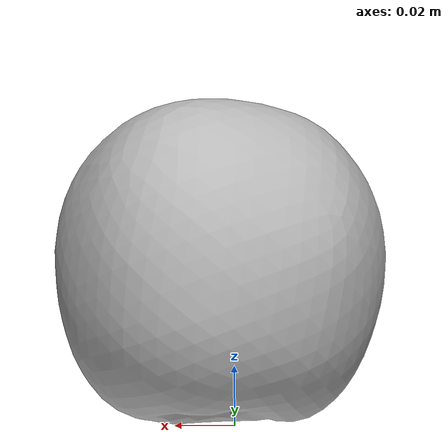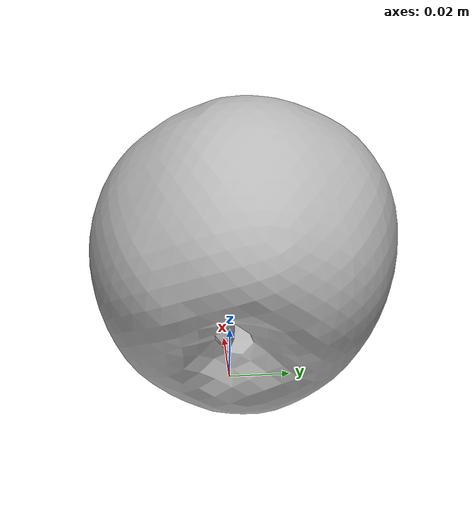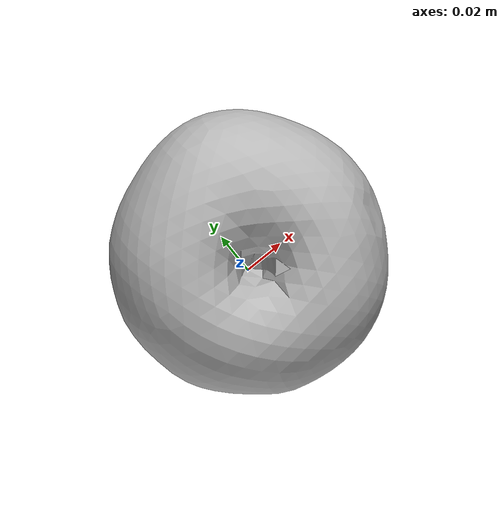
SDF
<?xml version='1.0'?>
<sdf version='1.6'>
  <model name='apple'>
    <link name='link_1'>
         <visual name='visual'>
        <pose frame=''>0 0 0 0 0 0</pose>
        <geometry>
          <mesh>
            <uri>model://apple/meshes/apple.dae</uri>
            <scale>0.9 0.9 0.9</scale>
          </mesh>
        </geometry>
        <cast_shadows>0</cast_shadows>
        <transparency>0</transparency>
      </visual>

      <collision name="collision">
        <geometry>
          <mesh>
            <uri>model://apple/meshes/apple.dae</uri>
            <scale>0.9 0.9 0.9</scale>
          </mesh>
        </geometry>
      </collision>

    </link>

    <static>1</static>
    <allow_auto_disable>1</allow_auto_disable>
  </model>
</sdf>
